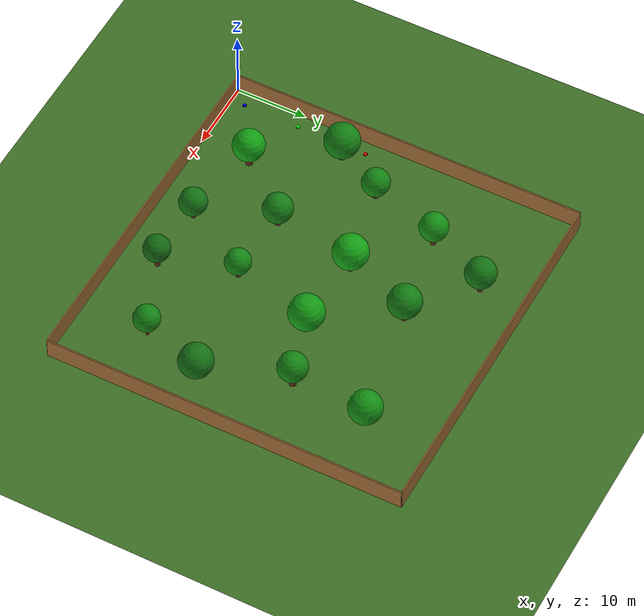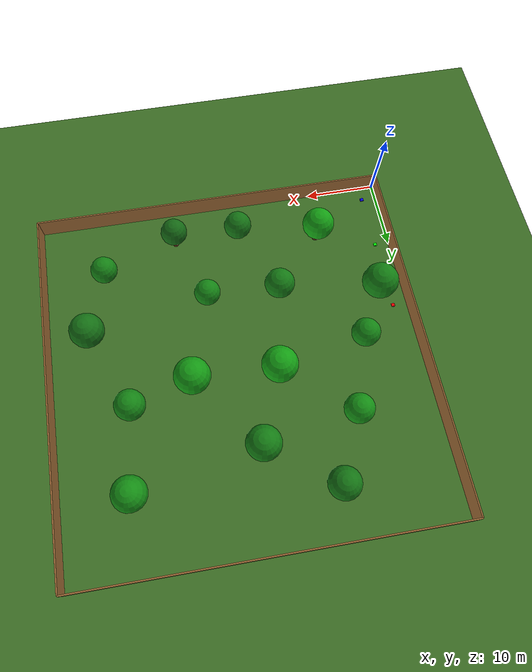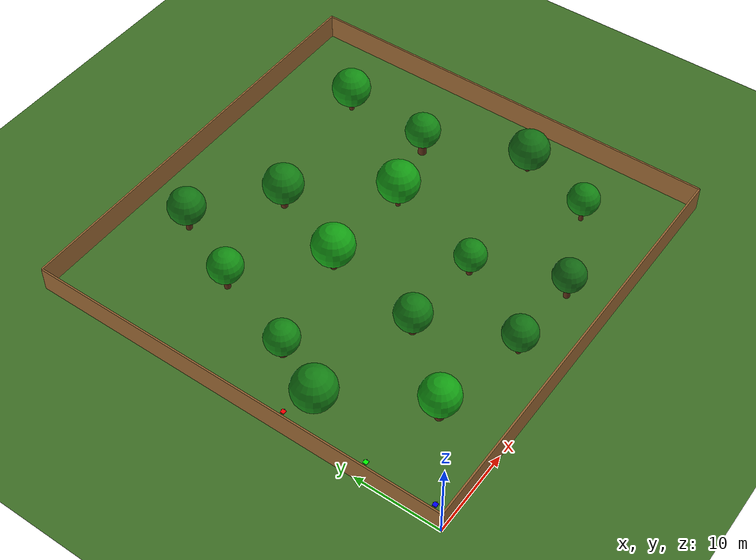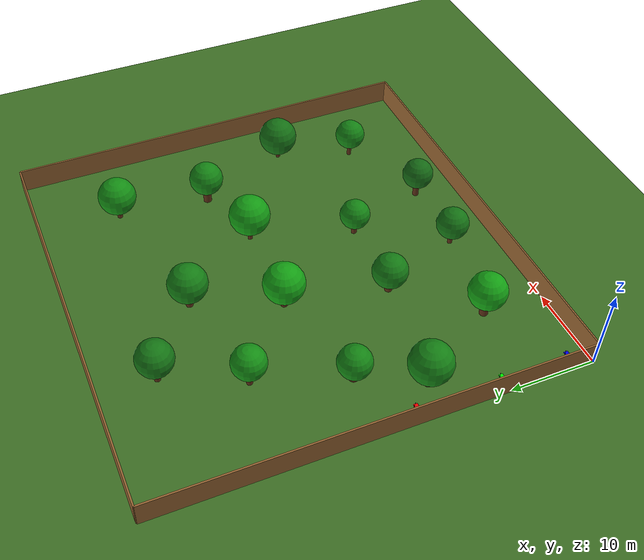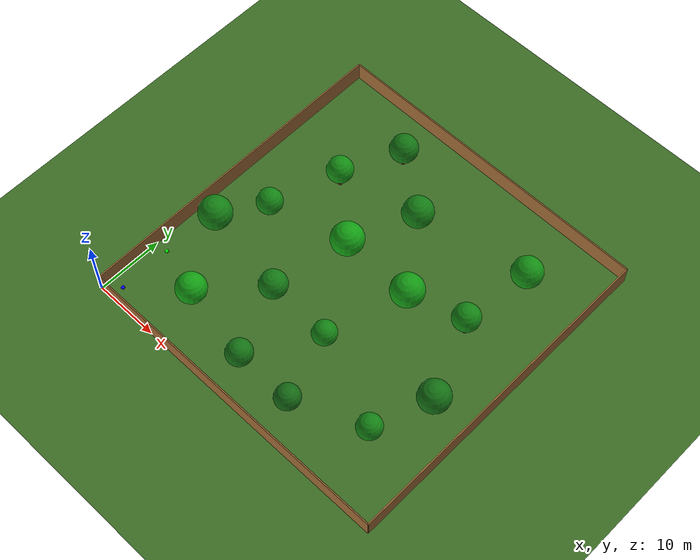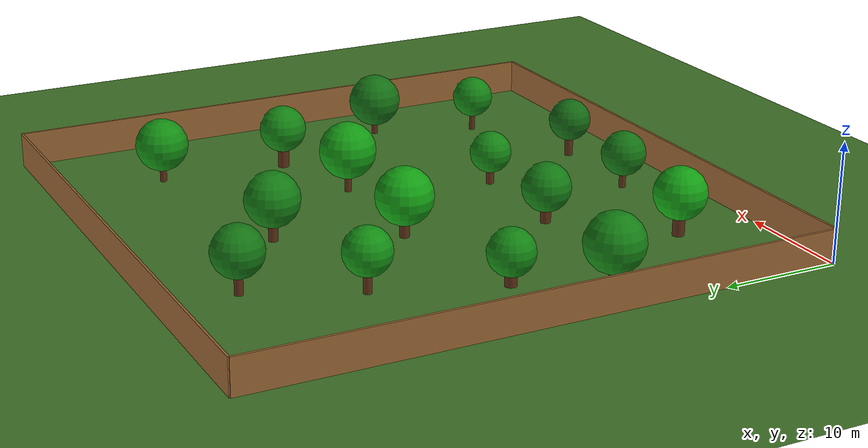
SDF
<sdf version="1.7">
 <world name="durian_orchard">
  <physics type="ode">
   <max_step_size>0.001</max_step_size>
   <real_time_factor>1</real_time_factor>
   <real_time_update_rate>1000</real_time_update_rate>
  </physics>
  <scene><ambient>0.5 0.5 0.5 1</ambient><background>0.5 0.7 0.9 1</background><shadows>1</shadows></scene>
  <light name="sun" type="directional">
   <pose>0 0 10 0 -0 0</pose>
   <diffuse>0.8 0.8 0.8 1</diffuse>
   <specular>0.2 0.2 0.2 1</specular>
   <attenuation>
    <range>1000</range>
    <constant>0.9</constant>
    <linear>0.01</linear>
    <quadratic>0.001</quadratic>
   </attenuation>
   <direction>-0.5 0.1 -0.9</direction>
   <spot><inner_angle>0</inner_angle><outer_angle>0</outer_angle><falloff>0</falloff></spot>
  </light>
  <model name="ground_plane">
   <static>1</static>
   <link name="link">
    <collision name="collision">
     <geometry><plane><normal>0 0 1</normal><size>200 200</size></plane></geometry>
    </collision>
    <visual name="visual">
     <geometry><plane><normal>0 0 1</normal><size>200 200</size></plane></geometry>
     <material><ambient>0.25 0.45 0.15 1</ambient><diffuse>0.25 0.45 0.15 1</diffuse></material>
    </visual>
   </link>
  </model>
  <model name="boundary_wall_south">
   <pose>25 0 1.5 0 -0 0</pose>
   <static>1</static>
   <link name="link">
    <collision name="collision"><geometry><box><size>50 0.2 3</size></box></geometry></collision>
    <visual name="visual">
     <geometry><box><size>50 0.2 3</size></box></geometry>
     <material><ambient>0.6 0.4 0.2 1</ambient><diffuse>0.6 0.4 0.2 1</diffuse></material>
    </visual>
   </link>
  </model>
  <model name="boundary_wall_north">
   <pose>25 50 1.5 0 -0 0</pose>
   <static>1</static>
   <link name="link">
    <collision name="collision"><geometry><box><size>50 0.2 3</size></box></geometry></collision>
    <visual name="visual">
     <geometry><box><size>50 0.2 3</size></box></geometry>
     <material><ambient>0.6 0.4 0.2 1</ambient><diffuse>0.6 0.4 0.2 1</diffuse></material>
    </visual>
   </link>
  </model>
  <model name="boundary_wall_west">
   <pose>0 25 1.5 0 -0 0</pose>
   <static>1</static>
   <link name="link">
    <collision name="collision"><geometry><box><size>0.2 50 3</size></box></geometry></collision>
    <visual name="visual">
     <geometry><box><size>0.2 50 3</size></box></geometry>
     <material><ambient>0.6 0.4 0.2 1</ambient><diffuse>0.6 0.4 0.2 1</diffuse></material>
    </visual>
   </link>
  </model>
  <model name="boundary_wall_east">
   <pose>50 25 1.5 0 -0 0</pose>
   <static>1</static>
   <link name="link">
    <collision name="collision"><geometry><box><size>0.2 50 3</size></box></geometry></collision>
    <visual name="visual">
     <geometry><box><size>0.2 50 3</size></box></geometry>
     <material><ambient>0.6 0.4 0.2 1</ambient><diffuse>0.6 0.4 0.2 1</diffuse></material>
    </visual>
   </link>
  </model>
  <model name="tree_0">
   <pose>21.72 5.25 1.52 0 -0 0</pose>
   <static>1</static>
   <link name="trunk">
    <visual name="visual">
     <geometry><cylinder><radius>0.29</radius><length>3.05</length></cylinder></geometry>
     <material><ambient>0.35 0.18 0.08 1</ambient><diffuse>0.35 0.18 0.08 1</diffuse></material>
    </visual>
    <collision name="collision">
     <geometry><cylinder><radius>0.29</radius><length>3.05</length></cylinder></geometry>
    </collision>
   </link>
   <link name="foliage">
    <pose>0 0 1.55 0 -0 0</pose>
    <visual name="visual">
     <geometry><sphere><radius>1.94</radius></sphere></geometry>
     <material><ambient>0.08 0.46 0.08 1</ambient><diffuse>0.08 0.46 0.08 1</diffuse></material>
    </visual>
   </link>
  </model>
  <model name="tree_1">
   <pose>11.19 34.62 1.81 0 -0 0</pose>
   <static>1</static>
   <link name="trunk">
    <visual name="visual">
     <geometry><cylinder><radius>0.35</radius><length>3.62</length></cylinder></geometry>
     <material><ambient>0.35 0.18 0.08 1</ambient><diffuse>0.35 0.18 0.08 1</diffuse></material>
    </visual>
    <collision name="collision">
     <geometry><cylinder><radius>0.35</radius><length>3.62</length></cylinder></geometry>
    </collision>
   </link>
   <link name="foliage">
    <pose>0 0 1.58 0 -0 0</pose>
    <visual name="visual">
     <geometry><sphere><radius>1.98</radius></sphere></geometry>
     <material><ambient>0.08 0.57 0.08 1</ambient><diffuse>0.08 0.57 0.08 1</diffuse></material>
    </visual>
   </link>
  </model>
  <model name="tree_2">
   <pose>4.02 17.61 1.63 0 -0 0</pose>
   <static>1</static>
   <link name="trunk">
    <visual name="visual">
     <geometry><cylinder><radius>0.37</radius><length>3.26</length></cylinder></geometry>
     <material><ambient>0.35 0.18 0.08 1</ambient><diffuse>0.35 0.18 0.08 1</diffuse></material>
    </visual>
    <collision name="collision">
     <geometry><cylinder><radius>0.37</radius><length>3.26</length></cylinder></geometry>
    </collision>
   </link>
   <link name="foliage">
    <pose>0 0 1.97 0 -0 0</pose>
    <visual name="visual">
     <geometry><sphere><radius>2.46</radius></sphere></geometry>
     <material><ambient>0.08 0.51 0.08 1</ambient><diffuse>0.08 0.51 0.08 1</diffuse></material>
    </visual>
   </link>
  </model>
  <model name="tree_4">
   <pose>40.77 40.21 1.51 0 -0 0</pose>
   <static>1</static>
   <link name="trunk">
    <visual name="visual">
     <geometry><cylinder><radius>0.29</radius><length>3.02</length></cylinder></geometry>
     <material><ambient>0.35 0.18 0.08 1</ambient><diffuse>0.35 0.18 0.08 1</diffuse></material>
    </visual>
    <collision name="collision">
     <geometry><cylinder><radius>0.29</radius><length>3.02</length></cylinder></geometry>
    </collision>
   </link>
   <link name="foliage">
    <pose>0 0 1.82 0 -0 0</pose>
    <visual name="visual">
     <geometry><sphere><radius>2.28</radius></sphere></geometry>
     <material><ambient>0.08 0.57 0.08 1</ambient><diffuse>0.08 0.57 0.08 1</diffuse></material>
    </visual>
   </link>
  </model>
  <model name="tree_5">
   <pose>39.59 29.36 1.88 0 -0 0</pose>
   <static>1</static>
   <link name="trunk">
    <visual name="visual">
     <geometry><cylinder><radius>0.49</radius><length>3.76</length></cylinder></geometry>
     <material><ambient>0.35 0.18 0.08 1</ambient><diffuse>0.35 0.18 0.08 1</diffuse></material>
    </visual>
    <collision name="collision">
     <geometry><cylinder><radius>0.49</radius><length>3.76</length></cylinder></geometry>
    </collision>
   </link>
   <link name="foliage">
    <pose>0 0 1.63 0 -0 0</pose>
    <visual name="visual">
     <geometry><sphere><radius>2.04</radius></sphere></geometry>
     <material><ambient>0.08 0.53 0.08 1</ambient><diffuse>0.08 0.53 0.08 1</diffuse></material>
    </visual>
   </link>
  </model>
  <model name="tree_6">
   <pose>15.21 43.34 1.82 0 -0 0</pose>
   <static>1</static>
   <link name="trunk">
    <visual name="visual">
     <geometry><cylinder><radius>0.35</radius><length>3.64</length></cylinder></geometry>
     <material><ambient>0.35 0.18 0.08 1</ambient><diffuse>0.35 0.18 0.08 1</diffuse></material>
    </visual>
    <collision name="collision">
     <geometry><cylinder><radius>0.35</radius><length>3.64</length></cylinder></geometry>
    </collision>
   </link>
   <link name="foliage">
    <pose>0 0 1.7 0 -0 0</pose>
    <visual name="visual">
     <geometry><sphere><radius>2.13</radius></sphere></geometry>
     <material><ambient>0.08 0.47 0.08 1</ambient><diffuse>0.08 0.47 0.08 1</diffuse></material>
    </visual>
   </link>
  </model>
  <model name="tree_7">
   <pose>7.6 24.41 1.21 0 -0 0</pose>
   <static>1</static>
   <link name="trunk">
    <visual name="visual">
     <geometry><cylinder><radius>0.5</radius><length>2.41</length></cylinder></geometry>
     <material><ambient>0.35 0.18 0.08 1</ambient><diffuse>0.35 0.18 0.08 1</diffuse></material>
    </visual>
    <collision name="collision">
     <geometry><cylinder><radius>0.5</radius><length>2.41</length></cylinder></geometry>
    </collision>
   </link>
   <link name="foliage">
    <pose>0 0 1.55 0 -0 0</pose>
    <visual name="visual">
     <geometry><sphere><radius>1.94</radius></sphere></geometry>
     <material><ambient>0.08 0.53 0.08 1</ambient><diffuse>0.08 0.53 0.08 1</diffuse></material>
    </visual>
   </link>
  </model>
  <model name="tree_8">
   <pose>19.9 27.19 1.57 0 -0 0</pose>
   <static>1</static>
   <link name="trunk">
    <visual name="visual">
     <geometry><cylinder><radius>0.4</radius><length>3.14</length></cylinder></geometry>
     <material><ambient>0.35 0.18 0.08 1</ambient><diffuse>0.35 0.18 0.08 1</diffuse></material>
    </visual>
    <collision name="collision">
     <geometry><cylinder><radius>0.4</radius><length>3.14</length></cylinder></geometry>
    </collision>
   </link>
   <link name="foliage">
    <pose>0 0 1.94 0 -0 0</pose>
    <visual name="visual">
     <geometry><sphere><radius>2.43</radius></sphere></geometry>
     <material><ambient>0.08 0.64 0.08 1</ambient><diffuse>0.08 0.64 0.08 1</diffuse></material>
    </visual>
   </link>
  </model>
  <model name="tree_10">
   <pose>10.41 7.27 1.83 0 -0 0</pose>
   <static>1</static>
   <link name="trunk">
    <visual name="visual">
     <geometry><cylinder><radius>0.5</radius><length>3.67</length></cylinder></geometry>
     <material><ambient>0.35 0.18 0.08 1</ambient><diffuse>0.35 0.18 0.08 1</diffuse></material>
    </visual>
    <collision name="collision">
     <geometry><cylinder><radius>0.5</radius><length>3.67</length></cylinder></geometry>
    </collision>
   </link>
   <link name="foliage">
    <pose>0 0 1.77 0 -0 0</pose>
    <visual name="visual">
     <geometry><sphere><radius>2.22</radius></sphere></geometry>
     <material><ambient>0.08 0.64 0.08 1</ambient><diffuse>0.08 0.64 0.08 1</diffuse></material>
    </visual>
   </link>
  </model>
  <model name="tree_11">
   <pose>41.17 9.39 1.73 0 -0 0</pose>
   <static>1</static>
   <link name="trunk">
    <visual name="visual">
     <geometry><cylinder><radius>0.26</radius><length>3.46</length></cylinder></geometry>
     <material><ambient>0.35 0.18 0.08 1</ambient><diffuse>0.35 0.18 0.08 1</diffuse></material>
    </visual>
    <collision name="collision">
     <geometry><cylinder><radius>0.26</radius><length>3.46</length></cylinder></geometry>
    </collision>
   </link>
   <link name="foliage">
    <pose>0 0 1.46 0 -0 0</pose>
    <visual name="visual">
     <geometry><sphere><radius>1.83</radius></sphere></geometry>
     <material><ambient>0.08 0.52 0.08 1</ambient><diffuse>0.08 0.52 0.08 1</diffuse></material>
    </visual>
   </link>
  </model>
  <model name="tree_12">
   <pose>30.86 5.05 1.86 0 -0 0</pose>
   <static>1</static>
   <link name="trunk">
    <visual name="visual">
     <geometry><cylinder><radius>0.36</radius><length>3.71</length></cylinder></geometry>
     <material><ambient>0.35 0.18 0.08 1</ambient><diffuse>0.35 0.18 0.08 1</diffuse></material>
    </visual>
    <collision name="collision">
     <geometry><cylinder><radius>0.36</radius><length>3.71</length></cylinder></geometry>
    </collision>
   </link>
   <link name="foliage">
    <pose>0 0 1.49 0 -0 0</pose>
    <visual name="visual">
     <geometry><sphere><radius>1.86</radius></sphere></geometry>
     <material><ambient>0.08 0.42 0.08 1</ambient><diffuse>0.08 0.42 0.08 1</diffuse></material>
    </visual>
   </link>
  </model>
  <model name="tree_13">
   <pose>27.58 15.04 1.45 0 -0 0</pose>
   <static>1</static>
   <link name="trunk">
    <visual name="visual">
     <geometry><cylinder><radius>0.33</radius><length>2.9</length></cylinder></geometry>
     <material><ambient>0.35 0.18 0.08 1</ambient><diffuse>0.35 0.18 0.08 1</diffuse></material>
    </visual>
    <collision name="collision">
     <geometry><cylinder><radius>0.33</radius><length>2.9</length></cylinder></geometry>
    </collision>
   </link>
   <link name="foliage">
    <pose>0 0 1.44 0 -0 0</pose>
    <visual name="visual">
     <geometry><sphere><radius>1.8</radius></sphere></geometry>
     <material><ambient>0.08 0.53 0.08 1</ambient><diffuse>0.08 0.53 0.08 1</diffuse></material>
    </visual>
   </link>
  </model>
  <model name="tree_14">
   <pose>44.2 18.14 1.36 0 -0 0</pose>
   <static>1</static>
   <link name="trunk">
    <visual name="visual">
     <geometry><cylinder><radius>0.26</radius><length>2.72</length></cylinder></geometry>
     <material><ambient>0.35 0.18 0.08 1</ambient><diffuse>0.35 0.18 0.08 1</diffuse></material>
    </visual>
    <collision name="collision">
     <geometry><cylinder><radius>0.26</radius><length>2.72</length></cylinder></geometry>
    </collision>
   </link>
   <link name="foliage">
    <pose>0 0 1.88 0 -0 0</pose>
    <visual name="visual">
     <geometry><sphere><radius>2.35</radius></sphere></geometry>
     <material><ambient>0.08 0.45 0.08 1</ambient><diffuse>0.08 0.45 0.08 1</diffuse></material>
    </visual>
   </link>
  </model>
  <model name="tree_15">
   <pose>17.58 15.42 1.41 0 -0 0</pose>
   <static>1</static>
   <link name="trunk">
    <visual name="visual">
     <geometry><cylinder><radius>0.44</radius><length>2.81</length></cylinder></geometry>
     <material><ambient>0.35 0.18 0.08 1</ambient><diffuse>0.35 0.18 0.08 1</diffuse></material>
    </visual>
    <collision name="collision">
     <geometry><cylinder><radius>0.44</radius><length>2.81</length></cylinder></geometry>
    </collision>
   </link>
   <link name="foliage">
    <pose>0 0 1.67 0 -0 0</pose>
    <visual name="visual">
     <geometry><sphere><radius>2.08</radius></sphere></geometry>
     <material><ambient>0.08 0.49 0.08 1</ambient><diffuse>0.08 0.49 0.08 1</diffuse></material>
    </visual>
   </link>
  </model>
  <model name="tree_16">
   <pose>31.3 26.89 1.76 0 -0 0</pose>
   <static>1</static>
   <link name="trunk">
    <visual name="visual">
     <geometry><cylinder><radius>0.28</radius><length>3.51</length></cylinder></geometry>
     <material><ambient>0.35 0.18 0.08 1</ambient><diffuse>0.35 0.18 0.08 1</diffuse></material>
    </visual>
    <collision name="collision">
     <geometry><cylinder><radius>0.28</radius><length>3.51</length></cylinder></geometry>
    </collision>
   </link>
   <link name="foliage">
    <pose>0 0 1.96 0 -0 0</pose>
    <visual name="visual">
     <geometry><sphere><radius>2.45</radius></sphere></geometry>
     <material><ambient>0.08 0.62 0.08 1</ambient><diffuse>0.08 0.62 0.08 1</diffuse></material>
    </visual>
   </link>
  </model>
  <model name="tree_17">
   <pose>23.85 36.95 1.68 0 -0 0</pose>
   <static>1</static>
   <link name="trunk">
    <visual name="visual">
     <geometry><cylinder><radius>0.4</radius><length>3.36</length></cylinder></geometry>
     <material><ambient>0.35 0.18 0.08 1</ambient><diffuse>0.35 0.18 0.08 1</diffuse></material>
    </visual>
    <collision name="collision">
     <geometry><cylinder><radius>0.4</radius><length>3.36</length></cylinder></geometry>
    </collision>
   </link>
   <link name="foliage">
    <pose>0 0 1.86 0 -0 0</pose>
    <visual name="visual">
     <geometry><sphere><radius>2.32</radius></sphere></geometry>
     <material><ambient>0.08 0.5 0.08 1</ambient><diffuse>0.08 0.5 0.08 1</diffuse></material>
    </visual>
   </link>
  </model>
  <model name="drone_1">
   <pose>2 2 0.055 0 -0 0</pose>
   <static>0</static>
   <link name="base_link">
    <inertial>
     <mass>1.5</mass>
     <inertia>
      <ixx>0.029125</ixx>
      <ixy>0</ixy>
      <ixz>0</ixz>
      <iyy>0.029125</iyy>
      <iyz>0</iyz>
      <izz>0.055225</izz>
     </inertia>
    </inertial>
    <visual name="body_visual">
     <geometry><box><size>0.47 0.47 0.11</size></box></geometry>
     <material><ambient>0 0 1 1</ambient><diffuse>0 0 1 1</diffuse></material>
    </visual>
    <collision name="collision"><geometry><box><size>0.47 0.47 0.11</size></box></geometry></collision>
    <visual name="arm1_visual">
     <pose>0.23 0 0 0 -0 0</pose>
     <geometry><cylinder><radius>0.03</radius><length>0.4</length></cylinder></geometry>
     <material><ambient>0.2 0.2 0.2 1</ambient><diffuse>0.2 0.2 0.2 1</diffuse></material>
    </visual>
    <visual name="arm2_visual">
     <pose>0 0.23 0 0 -0 1.5708</pose>
     <geometry><cylinder><radius>0.03</radius><length>0.4</length></cylinder></geometry>
     <material><ambient>0.2 0.2 0.2 1</ambient><diffuse>0.2 0.2 0.2 1</diffuse></material>
    </visual>
   </link>
  </model>
  <model name="drone_2">
   <pose>2 10 0.055 0 -0 0</pose>
   <static>0</static>
   <link name="base_link">
    <inertial>
     <mass>1.5</mass>
     <inertia>
      <ixx>0.029125</ixx>
      <ixy>0</ixy>
      <ixz>0</ixz>
      <iyy>0.029125</iyy>
      <iyz>0</iyz>
      <izz>0.055225</izz>
     </inertia>
    </inertial>
    <visual name="body_visual">
     <geometry><box><size>0.47 0.47 0.11</size></box></geometry>
     <material><ambient>0 1 0 1</ambient><diffuse>0 1 0 1</diffuse></material>
    </visual>
    <collision name="collision"><geometry><box><size>0.47 0.47 0.11</size></box></geometry></collision>
    <visual name="arm1_visual">
     <pose>0.23 0 0 0 -0 0</pose>
     <geometry><cylinder><radius>0.03</radius><length>0.4</length></cylinder></geometry>
     <material><ambient>0.2 0.2 0.2 1</ambient><diffuse>0.2 0.2 0.2 1</diffuse></material>
    </visual>
    <visual name="arm2_visual">
     <pose>0 0.23 0 0 -0 1.5708</pose>
     <geometry><cylinder><radius>0.03</radius><length>0.4</length></cylinder></geometry>
     <material><ambient>0.2 0.2 0.2 1</ambient><diffuse>0.2 0.2 0.2 1</diffuse></material>
    </visual>
   </link>
  </model>
  <model name="drone_3">
   <pose>2 20 0.055 0 -0 0</pose>
   <static>0</static>
   <link name="base_link">
    <inertial>
     <mass>1.5</mass>
     <inertia>
      <ixx>0.029125</ixx>
      <ixy>0</ixy>
      <ixz>0</ixz>
      <iyy>0.029125</iyy>
      <iyz>0</iyz>
      <izz>0.055225</izz>
     </inertia>
    </inertial>
    <visual name="body_visual">
     <geometry><box><size>0.47 0.47 0.11</size></box></geometry>
     <material><ambient>1 0 0 1</ambient><diffuse>1 0 0 1</diffuse></material>
    </visual>
    <collision name="collision"><geometry><box><size>0.47 0.47 0.11</size></box></geometry></collision>
    <visual name="arm1_visual">
     <pose>0.23 0 0 0 -0 0</pose>
     <geometry><cylinder><radius>0.03</radius><length>0.4</length></cylinder></geometry>
     <material><ambient>0.2 0.2 0.2 1</ambient><diffuse>0.2 0.2 0.2 1</diffuse></material>
    </visual>
    <visual name="arm2_visual">
     <pose>0 0.23 0 0 -0 1.5708</pose>
     <geometry><cylinder><radius>0.03</radius><length>0.4</length></cylinder></geometry>
     <material><ambient>0.2 0.2 0.2 1</ambient><diffuse>0.2 0.2 0.2 1</diffuse></material>
    </visual>
   </link>
  </model>
  <gravity>0 0 -9.8</gravity>
  <magnetic_field>6e-06 2.3e-05 -4.2e-05</magnetic_field>
  <atmosphere type="adiabatic"/>
  <audio><device>default</device></audio>
  <spherical_coordinates>
   <surface_model>EARTH_WGS84</surface_model>
   <latitude_deg>0</latitude_deg>
   <longitude_deg>0</longitude_deg>
   <elevation>0</elevation>
   <heading_deg>0</heading_deg>
  </spherical_coordinates>
 </world>
</sdf>
